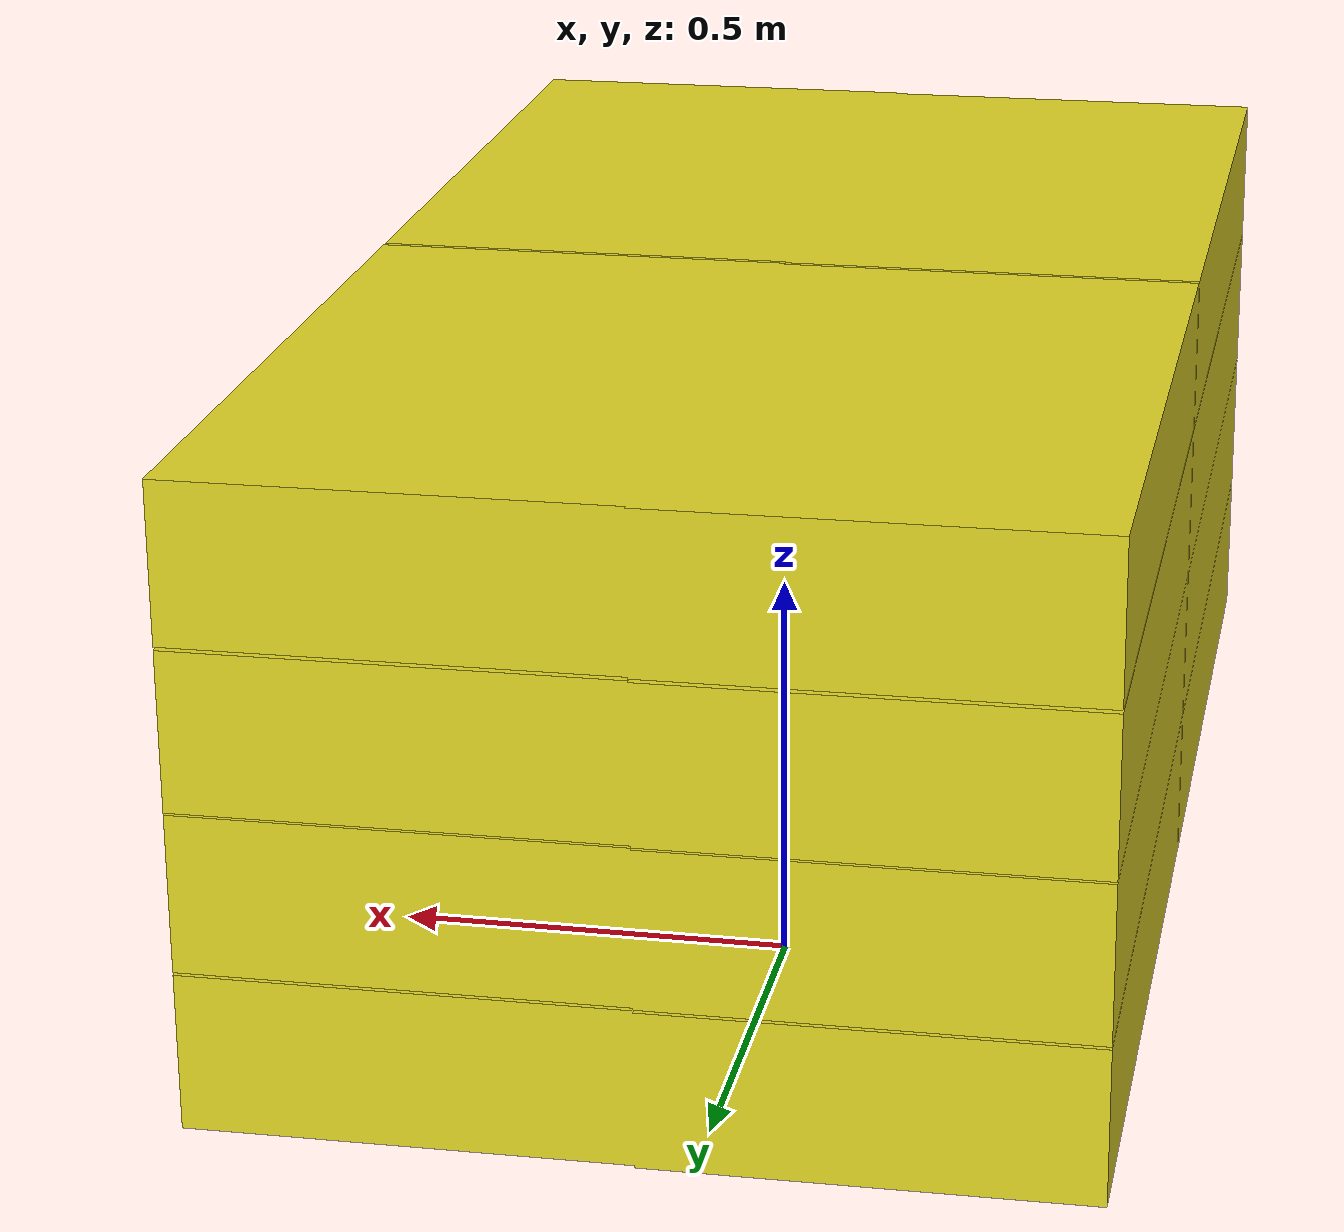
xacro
<?xml version="1.0"?>

<robot name="box" xmlns:xacro="http://ros.org/wiki/xacro">

    <link name="base_link">
    <inertial>
      <mass value="2"/>
      <inertia ixx="1" ixy="0" ixz="0" iyy="1" iyz="0" izz="1" />
      <origin/>
    </inertial>
    <visual>
      <origin rpy="0 0 0" xyz="0 0 0"/>
      <geometry>
	<mesh filename="package://construction_material/meshes/box_visual.dae" scale = "1 1.2 0.5"/>
      </geometry>
      <material name="yellow"/>
    </visual>
    <collision>
      <origin rpy="0 0 0" xyz="0 0 0"/>
      <geometry>
        <mesh filename="package://construction_material/meshes/box_collision.dae" scale = "1 1.2 0.5"/>
      </geometry>
    </collision>
  </link>

  </robot>
